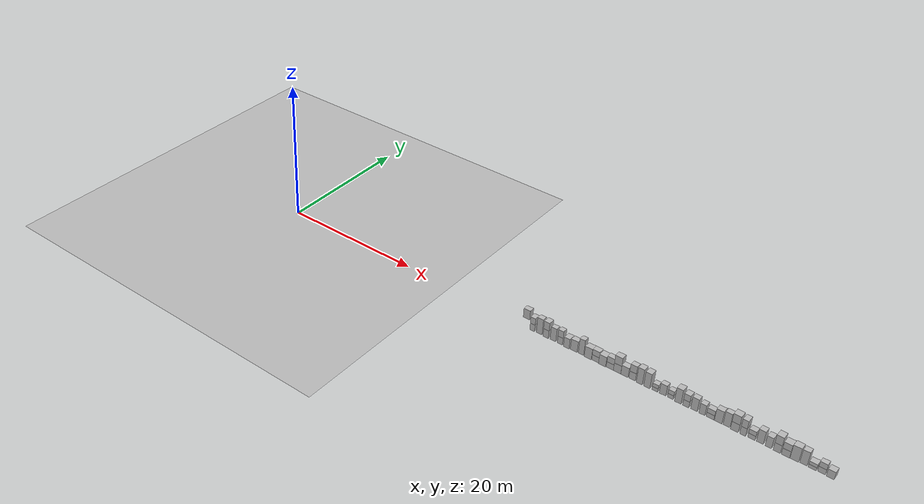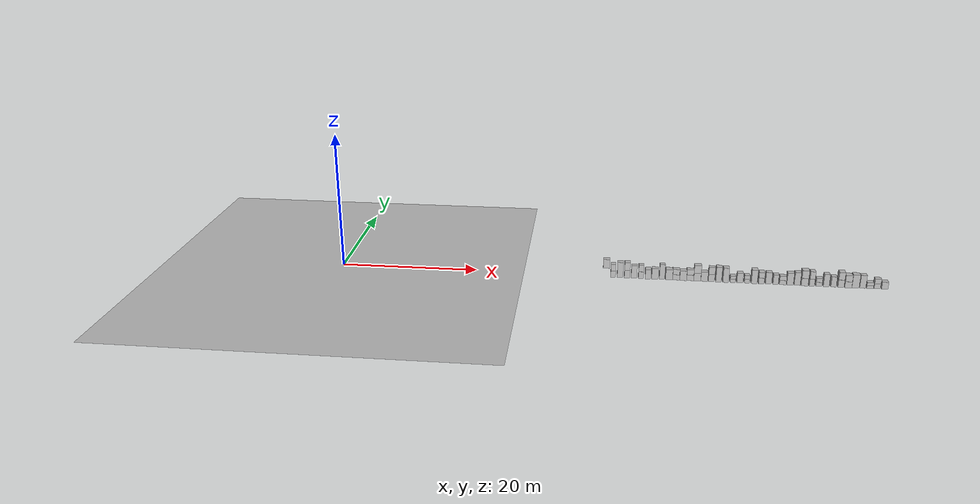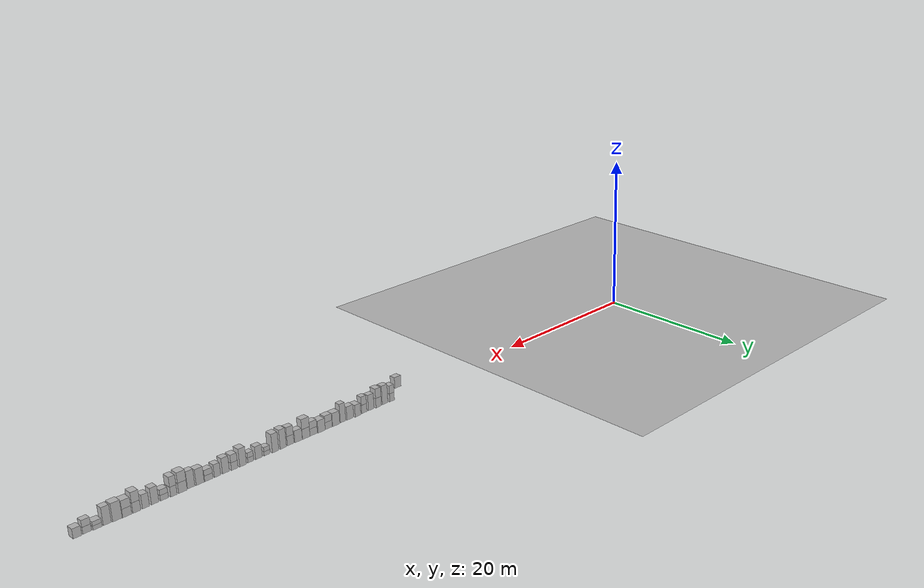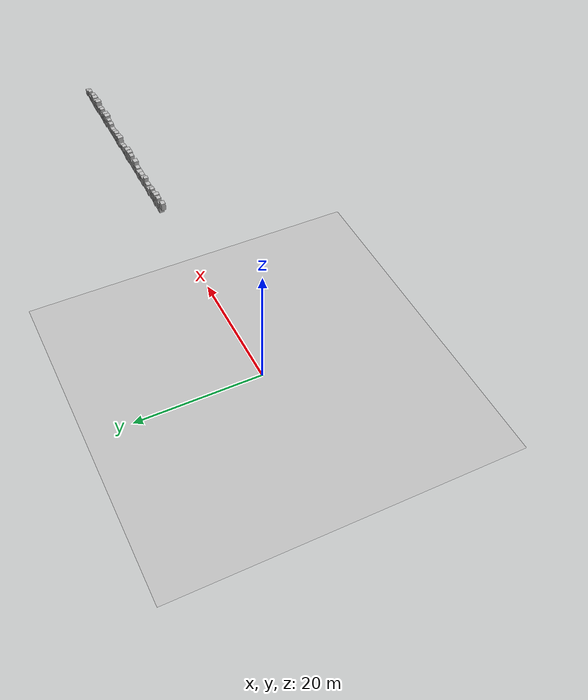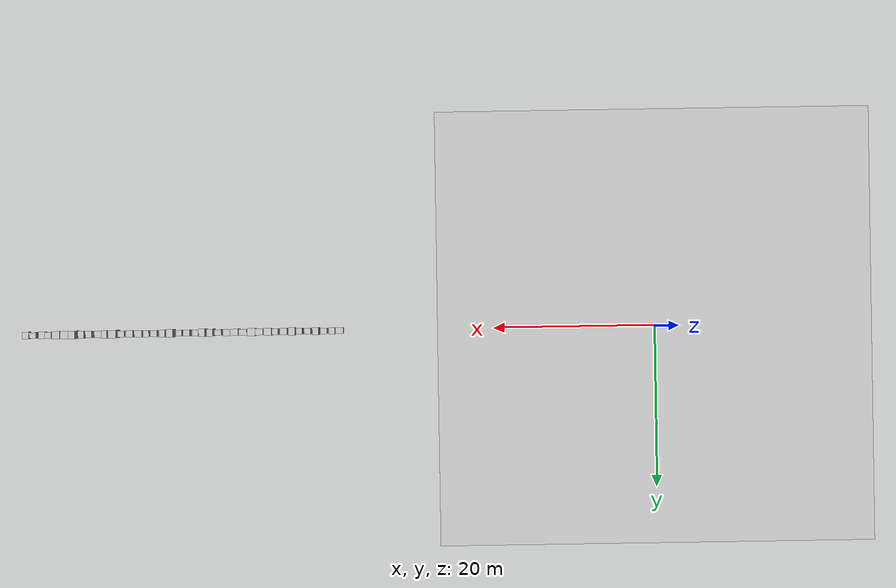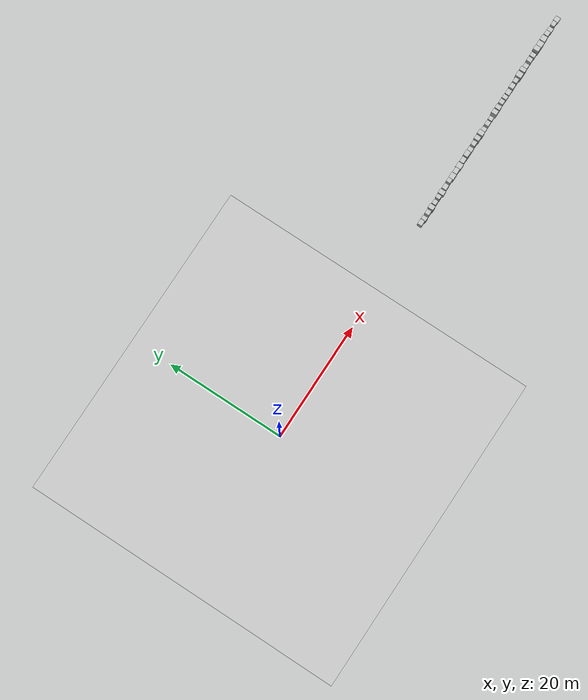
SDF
<sdf version="1.5">
 <world name="default">
  <model name="ground_plane">
   <static>true</static>
   <link name="link">
    <collision name="collision">
     <geometry><plane><normal>0 0 1</normal><size>250 250</size></plane></geometry>
     <surface><friction><ode><mu>1</mu><mu2>1</mu2></ode></friction></surface>
    </collision>
    <visual name="grass">
     <cast_shadows>false</cast_shadows>
     <geometry><mesh><uri>file://grass_plane/meshes/grass_plane.dae</uri></mesh></geometry>
    </visual>
   </link>
  </model>
  <model name="Cardboard_box_top_39">
   <link name="link_0">
    <pose>39 0 1.378921987 0 0 0</pose>
    <inertial>
     <mass>1</mass>
     <inertia>
      <ixx>0.166667</ixx>
      <ixy>0</ixy>
      <ixz>0</ixz>
      <iyy>0.166667</iyy>
      <iyz>0</iyz>
      <izz>0.166667</izz>
     </inertia>
    </inertial>
    <collision name="collision">
     <geometry>
      <mesh>
       <uri>model://Cardboard_box/meshes/cardboard_box.dae</uri>
       <scale>2.36988516869 1.93261764654 3.4473049675</scale>
      </mesh>
     </geometry>
    </collision>
    <visual name="visual">
     <geometry>
      <mesh>
       <uri>model://Cardboard_box/meshes/cardboard_box.dae</uri>
       <scale>2.36988516869 1.93261764654 3.4473049675</scale>
      </mesh>
     </geometry>
    </visual>
   </link>
   <static>1</static>
  </model>
  <model name="Cardboard_box_40">
   <link name="link_0">
    <pose>40 0 0 0 0 0</pose>
    <inertial>
     <mass>1</mass>
     <inertia>
      <ixx>0.166667</ixx>
      <ixy>0</ixy>
      <ixz>0</ixz>
      <iyy>0.166667</iyy>
      <iyz>0</iyz>
      <izz>0.166667</izz>
     </inertia>
    </inertial>
    <collision name="collision">
     <geometry>
      <mesh>
       <uri>model://Cardboard_box/meshes/cardboard_box.dae</uri>
       <scale>1.74623476498 2.15648304569 2.54420324199</scale>
      </mesh>
     </geometry>
    </collision>
    <visual name="visual">
     <geometry>
      <mesh>
       <uri>model://Cardboard_box/meshes/cardboard_box.dae</uri>
       <scale>1.74623476498 2.15648304569 2.54420324199</scale>
      </mesh>
     </geometry>
    </visual>
   </link>
   <static>1</static>
  </model>
  <model name="Cardboard_box_top_40">
   <link name="link_0">
    <pose>40 0 1.0176812968 0 0 0</pose>
    <inertial>
     <mass>1</mass>
     <inertia>
      <ixx>0.166667</ixx>
      <ixy>0</ixy>
      <ixz>0</ixz>
      <iyy>0.166667</iyy>
      <iyz>0</iyz>
      <izz>0.166667</izz>
     </inertia>
    </inertial>
    <collision name="collision">
     <geometry>
      <mesh>
       <uri>model://Cardboard_box/meshes/cardboard_box.dae</uri>
       <scale>1.74623476498 2.15648304569 2.54420324199</scale>
      </mesh>
     </geometry>
    </collision>
    <visual name="visual">
     <geometry>
      <mesh>
       <uri>model://Cardboard_box/meshes/cardboard_box.dae</uri>
       <scale>1.74623476498 2.15648304569 2.54420324199</scale>
      </mesh>
     </geometry>
    </visual>
   </link>
   <static>1</static>
  </model>
  <model name="Cardboard_box_41">
   <link name="link_0">
    <pose>41 0 0 0 0 0</pose>
    <inertial>
     <mass>1</mass>
     <inertia>
      <ixx>0.166667</ixx>
      <ixy>0</ixy>
      <ixz>0</ixz>
      <iyy>0.166667</iyy>
      <iyz>0</iyz>
      <izz>0.166667</izz>
     </inertia>
    </inertial>
    <collision name="collision">
     <geometry>
      <mesh>
       <uri>model://Cardboard_box/meshes/cardboard_box.dae</uri>
       <scale>2.07174844695 1.8590701938 5.9690706106</scale>
      </mesh>
     </geometry>
    </collision>
    <visual name="visual">
     <geometry>
      <mesh>
       <uri>model://Cardboard_box/meshes/cardboard_box.dae</uri>
       <scale>2.07174844695 1.8590701938 5.9690706106</scale>
      </mesh>
     </geometry>
    </visual>
   </link>
   <static>1</static>
  </model>
  <model name="Cardboard_box_42">
   <link name="link_0">
    <pose>42 0 0 0 0 0</pose>
    <inertial>
     <mass>1</mass>
     <inertia>
      <ixx>0.166667</ixx>
      <ixy>0</ixy>
      <ixz>0</ixz>
      <iyy>0.166667</iyy>
      <iyz>0</iyz>
      <izz>0.166667</izz>
     </inertia>
    </inertial>
    <collision name="collision">
     <geometry>
      <mesh>
       <uri>model://Cardboard_box/meshes/cardboard_box.dae</uri>
       <scale>1.94985891384 2.32268803161 2.9977882604</scale>
      </mesh>
     </geometry>
    </collision>
    <visual name="visual">
     <geometry>
      <mesh>
       <uri>model://Cardboard_box/meshes/cardboard_box.dae</uri>
       <scale>1.94985891384 2.32268803161 2.9977882604</scale>
      </mesh>
     </geometry>
    </visual>
   </link>
   <static>1</static>
  </model>
  <model name="Cardboard_box_top_42">
   <link name="link_0">
    <pose>42 0 1.19911530416 0 0 0</pose>
    <inertial>
     <mass>1</mass>
     <inertia>
      <ixx>0.166667</ixx>
      <ixy>0</ixy>
      <ixz>0</ixz>
      <iyy>0.166667</iyy>
      <iyz>0</iyz>
      <izz>0.166667</izz>
     </inertia>
    </inertial>
    <collision name="collision">
     <geometry>
      <mesh>
       <uri>model://Cardboard_box/meshes/cardboard_box.dae</uri>
       <scale>1.94985891384 2.32268803161 2.9977882604</scale>
      </mesh>
     </geometry>
    </collision>
    <visual name="visual">
     <geometry>
      <mesh>
       <uri>model://Cardboard_box/meshes/cardboard_box.dae</uri>
       <scale>1.94985891384 2.32268803161 2.9977882604</scale>
      </mesh>
     </geometry>
    </visual>
   </link>
   <static>1</static>
  </model>
  <model name="Cardboard_box_43">
   <link name="link_0">
    <pose>43 0 0 0 0 0</pose>
    <inertial>
     <mass>1</mass>
     <inertia>
      <ixx>0.166667</ixx>
      <ixy>0</ixy>
      <ixz>0</ixz>
      <iyy>0.166667</iyy>
      <iyz>0</iyz>
      <izz>0.166667</izz>
     </inertia>
    </inertial>
    <collision name="collision">
     <geometry>
      <mesh>
       <uri>model://Cardboard_box/meshes/cardboard_box.dae</uri>
       <scale>2.02390120067 1.80275821605 4.88632480097</scale>
      </mesh>
     </geometry>
    </collision>
    <visual name="visual">
     <geometry>
      <mesh>
       <uri>model://Cardboard_box/meshes/cardboard_box.dae</uri>
       <scale>2.02390120067 1.80275821605 4.88632480097</scale>
      </mesh>
     </geometry>
    </visual>
   </link>
   <static>1</static>
  </model>
  <model name="Cardboard_box_44">
   <link name="link_0">
    <pose>44 0 0 0 0 0</pose>
    <inertial>
     <mass>1</mass>
     <inertia>
      <ixx>0.166667</ixx>
      <ixy>0</ixy>
      <ixz>0</ixz>
      <iyy>0.166667</iyy>
      <iyz>0</iyz>
      <izz>0.166667</izz>
     </inertia>
    </inertial>
    <collision name="collision">
     <geometry>
      <mesh>
       <uri>model://Cardboard_box/meshes/cardboard_box.dae</uri>
       <scale>1.82216494402 1.83633228518 2.60818425939</scale>
      </mesh>
     </geometry>
    </collision>
    <visual name="visual">
     <geometry>
      <mesh>
       <uri>model://Cardboard_box/meshes/cardboard_box.dae</uri>
       <scale>1.82216494402 1.83633228518 2.60818425939</scale>
      </mesh>
     </geometry>
    </visual>
   </link>
   <static>1</static>
  </model>
  <model name="Cardboard_box_top_44">
   <link name="link_0">
    <pose>44 0 1.04327370376 0 0 0</pose>
    <inertial>
     <mass>1</mass>
     <inertia>
      <ixx>0.166667</ixx>
      <ixy>0</ixy>
      <ixz>0</ixz>
      <iyy>0.166667</iyy>
      <iyz>0</iyz>
      <izz>0.166667</izz>
     </inertia>
    </inertial>
    <collision name="collision">
     <geometry>
      <mesh>
       <uri>model://Cardboard_box/meshes/cardboard_box.dae</uri>
       <scale>1.82216494402 1.83633228518 2.60818425939</scale>
      </mesh>
     </geometry>
    </collision>
    <visual name="visual">
     <geometry>
      <mesh>
       <uri>model://Cardboard_box/meshes/cardboard_box.dae</uri>
       <scale>1.82216494402 1.83633228518 2.60818425939</scale>
      </mesh>
     </geometry>
    </visual>
   </link>
   <static>1</static>
  </model>
  <model name="Cardboard_box_45">
   <link name="link_0">
    <pose>45 0 0 0 0 0</pose>
    <inertial>
     <mass>1</mass>
     <inertia>
      <ixx>0.166667</ixx>
      <ixy>0</ixy>
      <ixz>0</ixz>
      <iyy>0.166667</iyy>
      <iyz>0</iyz>
      <izz>0.166667</izz>
     </inertia>
    </inertial>
    <collision name="collision">
     <geometry>
      <mesh>
       <uri>model://Cardboard_box/meshes/cardboard_box.dae</uri>
       <scale>1.98125422236 2.49018535688 3.73680493574</scale>
      </mesh>
     </geometry>
    </collision>
    <visual name="visual">
     <geometry>
      <mesh>
       <uri>model://Cardboard_box/meshes/cardboard_box.dae</uri>
       <scale>1.98125422236 2.49018535688 3.73680493574</scale>
      </mesh>
     </geometry>
    </visual>
   </link>
   <static>1</static>
  </model>
  <model name="Cardboard_box_46">
   <link name="link_0">
    <pose>46 0 0 0 0 0</pose>
    <inertial>
     <mass>1</mass>
     <inertia>
      <ixx>0.166667</ixx>
      <ixy>0</ixy>
      <ixz>0</ixz>
      <iyy>0.166667</iyy>
      <iyz>0</iyz>
      <izz>0.166667</izz>
     </inertia>
    </inertial>
    <collision name="collision">
     <geometry>
      <mesh>
       <uri>model://Cardboard_box/meshes/cardboard_box.dae</uri>
       <scale>2.38174562929 1.97675415498 4.09787659887</scale>
      </mesh>
     </geometry>
    </collision>
    <visual name="visual">
     <geometry>
      <mesh>
       <uri>model://Cardboard_box/meshes/cardboard_box.dae</uri>
       <scale>2.38174562929 1.97675415498 4.09787659887</scale>
      </mesh>
     </geometry>
    </visual>
   </link>
   <static>1</static>
  </model>
  <model name="Cardboard_box_47">
   <link name="link_0">
    <pose>47 0 0 0 0 0</pose>
    <inertial>
     <mass>1</mass>
     <inertia>
      <ixx>0.166667</ixx>
      <ixy>0</ixy>
      <ixz>0</ixz>
      <iyy>0.166667</iyy>
      <iyz>0</iyz>
      <izz>0.166667</izz>
     </inertia>
    </inertial>
    <collision name="collision">
     <geometry>
      <mesh>
       <uri>model://Cardboard_box/meshes/cardboard_box.dae</uri>
       <scale>1.86855548333 1.81490779191 5.77954832776</scale>
      </mesh>
     </geometry>
    </collision>
    <visual name="visual">
     <geometry>
      <mesh>
       <uri>model://Cardboard_box/meshes/cardboard_box.dae</uri>
       <scale>1.86855548333 1.81490779191 5.77954832776</scale>
      </mesh>
     </geometry>
    </visual>
   </link>
   <static>1</static>
  </model>
  <model name="Cardboard_box_48">
   <link name="link_0">
    <pose>48 0 0 0 0 0</pose>
    <inertial>
     <mass>1</mass>
     <inertia>
      <ixx>0.166667</ixx>
      <ixy>0</ixy>
      <ixz>0</ixz>
      <iyy>0.166667</iyy>
      <iyz>0</iyz>
      <izz>0.166667</izz>
     </inertia>
    </inertial>
    <collision name="collision">
     <geometry>
      <mesh>
       <uri>model://Cardboard_box/meshes/cardboard_box.dae</uri>
       <scale>2.49047472815 2.23166376945 4.05586709387</scale>
      </mesh>
     </geometry>
    </collision>
    <visual name="visual">
     <geometry>
      <mesh>
       <uri>model://Cardboard_box/meshes/cardboard_box.dae</uri>
       <scale>2.49047472815 2.23166376945 4.05586709387</scale>
      </mesh>
     </geometry>
    </visual>
   </link>
   <static>1</static>
  </model>
  <model name="Cardboard_box_49">
   <link name="link_0">
    <pose>49 0 0 0 0 0</pose>
    <inertial>
     <mass>1</mass>
     <inertia>
      <ixx>0.166667</ixx>
      <ixy>0</ixy>
      <ixz>0</ixz>
      <iyy>0.166667</iyy>
      <iyz>0</iyz>
      <izz>0.166667</izz>
     </inertia>
    </inertial>
    <collision name="collision">
     <geometry>
      <mesh>
       <uri>model://Cardboard_box/meshes/cardboard_box.dae</uri>
       <scale>2.45009182766 1.96782809173 2.07866308442</scale>
      </mesh>
     </geometry>
    </collision>
    <visual name="visual">
     <geometry>
      <mesh>
       <uri>model://Cardboard_box/meshes/cardboard_box.dae</uri>
       <scale>2.45009182766 1.96782809173 2.07866308442</scale>
      </mesh>
     </geometry>
    </visual>
   </link>
   <static>1</static>
  </model>
  <model name="Cardboard_box_top_49">
   <link name="link_0">
    <pose>49 0 0.831465233766 0 0 0</pose>
    <inertial>
     <mass>1</mass>
     <inertia>
      <ixx>0.166667</ixx>
      <ixy>0</ixy>
      <ixz>0</ixz>
      <iyy>0.166667</iyy>
      <iyz>0</iyz>
      <izz>0.166667</izz>
     </inertia>
    </inertial>
    <collision name="collision">
     <geometry>
      <mesh>
       <uri>model://Cardboard_box/meshes/cardboard_box.dae</uri>
       <scale>2.45009182766 1.96782809173 2.07866308442</scale>
      </mesh>
     </geometry>
    </collision>
    <visual name="visual">
     <geometry>
      <mesh>
       <uri>model://Cardboard_box/meshes/cardboard_box.dae</uri>
       <scale>2.45009182766 1.96782809173 2.07866308442</scale>
      </mesh>
     </geometry>
    </visual>
   </link>
   <static>1</static>
  </model>
  <model name="Cardboard_box_50">
   <link name="link_0">
    <pose>50 0 0 0 0 0</pose>
    <inertial>
     <mass>1</mass>
     <inertia>
      <ixx>0.166667</ixx>
      <ixy>0</ixy>
      <ixz>0</ixz>
      <iyy>0.166667</iyy>
      <iyz>0</iyz>
      <izz>0.166667</izz>
     </inertia>
    </inertial>
    <collision name="collision">
     <geometry>
      <mesh>
       <uri>model://Cardboard_box/meshes/cardboard_box.dae</uri>
       <scale>2.43829130147 2.39519968935 3.71840603727</scale>
      </mesh>
     </geometry>
    </collision>
    <visual name="visual">
     <geometry>
      <mesh>
       <uri>model://Cardboard_box/meshes/cardboard_box.dae</uri>
       <scale>2.43829130147 2.39519968935 3.71840603727</scale>
      </mesh>
     </geometry>
    </visual>
   </link>
   <static>1</static>
  </model>
  <model name="Cardboard_box_51">
   <link name="link_0">
    <pose>51 0 0 0 0 0</pose>
    <inertial>
     <mass>1</mass>
     <inertia>
      <ixx>0.166667</ixx>
      <ixy>0</ixy>
      <ixz>0</ixz>
      <iyy>0.166667</iyy>
      <iyz>0</iyz>
      <izz>0.166667</izz>
     </inertia>
    </inertial>
    <collision name="collision">
     <geometry>
      <mesh>
       <uri>model://Cardboard_box/meshes/cardboard_box.dae</uri>
       <scale>2.46034102701 1.90035894033 2.1133312958</scale>
      </mesh>
     </geometry>
    </collision>
    <visual name="visual">
     <geometry>
      <mesh>
       <uri>model://Cardboard_box/meshes/cardboard_box.dae</uri>
       <scale>2.46034102701 1.90035894033 2.1133312958</scale>
      </mesh>
     </geometry>
    </visual>
   </link>
   <static>1</static>
  </model>
  <model name="Cardboard_box_top_51">
   <link name="link_0">
    <pose>51 0 0.84533251832 0 0 0</pose>
    <inertial>
     <mass>1</mass>
     <inertia>
      <ixx>0.166667</ixx>
      <ixy>0</ixy>
      <ixz>0</ixz>
      <iyy>0.166667</iyy>
      <iyz>0</iyz>
      <izz>0.166667</izz>
     </inertia>
    </inertial>
    <collision name="collision">
     <geometry>
      <mesh>
       <uri>model://Cardboard_box/meshes/cardboard_box.dae</uri>
       <scale>2.46034102701 1.90035894033 2.1133312958</scale>
      </mesh>
     </geometry>
    </collision>
    <visual name="visual">
     <geometry>
      <mesh>
       <uri>model://Cardboard_box/meshes/cardboard_box.dae</uri>
       <scale>2.46034102701 1.90035894033 2.1133312958</scale>
      </mesh>
     </geometry>
    </visual>
   </link>
   <static>1</static>
  </model>
  <model name="Cardboard_box_52">
   <link name="link_0">
    <pose>52 0 0 0 0 0</pose>
    <inertial>
     <mass>1</mass>
     <inertia>
      <ixx>0.166667</ixx>
      <ixy>0</ixy>
      <ixz>0</ixz>
      <iyy>0.166667</iyy>
      <iyz>0</iyz>
      <izz>0.166667</izz>
     </inertia>
    </inertial>
    <collision name="collision">
     <geometry>
      <mesh>
       <uri>model://Cardboard_box/meshes/cardboard_box.dae</uri>
       <scale>2.49603901147 2.05409869671 3.02047821061</scale>
      </mesh>
     </geometry>
    </collision>
    <visual name="visual">
     <geometry>
      <mesh>
       <uri>model://Cardboard_box/meshes/cardboard_box.dae</uri>
       <scale>2.49603901147 2.05409869671 3.02047821061</scale>
      </mesh>
     </geometry>
    </visual>
   </link>
   <static>1</static>
  </model>
  <model name="Cardboard_box_top_52">
   <link name="link_0">
    <pose>52 0 1.20819128424 0 0 0</pose>
    <inertial>
     <mass>1</mass>
     <inertia>
      <ixx>0.166667</ixx>
      <ixy>0</ixy>
      <ixz>0</ixz>
      <iyy>0.166667</iyy>
      <iyz>0</iyz>
      <izz>0.166667</izz>
     </inertia>
    </inertial>
    <collision name="collision">
     <geometry>
      <mesh>
       <uri>model://Cardboard_box/meshes/cardboard_box.dae</uri>
       <scale>2.49603901147 2.05409869671 3.02047821061</scale>
      </mesh>
     </geometry>
    </collision>
    <visual name="visual">
     <geometry>
      <mesh>
       <uri>model://Cardboard_box/meshes/cardboard_box.dae</uri>
       <scale>2.49603901147 2.05409869671 3.02047821061</scale>
      </mesh>
     </geometry>
    </visual>
   </link>
   <static>1</static>
  </model>
  <model name="Cardboard_box_53">
   <link name="link_0">
    <pose>53 0 0 0 0 0</pose>
    <inertial>
     <mass>1</mass>
     <inertia>
      <ixx>0.166667</ixx>
      <ixy>0</ixy>
      <ixz>0</ixz>
      <iyy>0.166667</iyy>
      <iyz>0</iyz>
      <izz>0.166667</izz>
     </inertia>
    </inertial>
    <collision name="collision">
     <geometry>
      <mesh>
       <uri>model://Cardboard_box/meshes/cardboard_box.dae</uri>
       <scale>2.45055112845 2.04536735304 3.56994293737</scale>
      </mesh>
     </geometry>
    </collision>
    <visual name="visual">
     <geometry>
      <mesh>
       <uri>model://Cardboard_box/meshes/cardboard_box.dae</uri>
       <scale>2.45055112845 2.04536735304 3.56994293737</scale>
      </mesh>
     </geometry>
    </visual>
   </link>
   <static>1</static>
  </model>
  <model name="Cardboard_box_54">
   <link name="link_0">
    <pose>54 0 0 0 0 0</pose>
    <inertial>
     <mass>1</mass>
     <inertia>
      <ixx>0.166667</ixx>
      <ixy>0</ixy>
      <ixz>0</ixz>
      <iyy>0.166667</iyy>
      <iyz>0</iyz>
      <izz>0.166667</izz>
     </inertia>
    </inertial>
    <collision name="collision">
     <geometry>
      <mesh>
       <uri>model://Cardboard_box/meshes/cardboard_box.dae</uri>
       <scale>2.15655675734 1.81292208911 2.74386636168</scale>
      </mesh>
     </geometry>
    </collision>
    <visual name="visual">
     <geometry>
      <mesh>
       <uri>model://Cardboard_box/meshes/cardboard_box.dae</uri>
       <scale>2.15655675734 1.81292208911 2.74386636168</scale>
      </mesh>
     </geometry>
    </visual>
   </link>
   <static>1</static>
  </model>
  <model name="Cardboard_box_top_54">
   <link name="link_0">
    <pose>54 0 1.09754654467 0 0 0</pose>
    <inertial>
     <mass>1</mass>
     <inertia>
      <ixx>0.166667</ixx>
      <ixy>0</ixy>
      <ixz>0</ixz>
      <iyy>0.166667</iyy>
      <iyz>0</iyz>
      <izz>0.166667</izz>
     </inertia>
    </inertial>
    <collision name="collision">
     <geometry>
      <mesh>
       <uri>model://Cardboard_box/meshes/cardboard_box.dae</uri>
       <scale>2.15655675734 1.81292208911 2.74386636168</scale>
      </mesh>
     </geometry>
    </collision>
    <visual name="visual">
     <geometry>
      <mesh>
       <uri>model://Cardboard_box/meshes/cardboard_box.dae</uri>
       <scale>2.15655675734 1.81292208911 2.74386636168</scale>
      </mesh>
     </geometry>
    </visual>
   </link>
   <static>1</static>
  </model>
  <model name="Cardboard_box_55">
   <link name="link_0">
    <pose>55 0 0 0 0 0</pose>
    <inertial>
     <mass>1</mass>
     <inertia>
      <ixx>0.166667</ixx>
      <ixy>0</ixy>
      <ixz>0</ixz>
      <iyy>0.166667</iyy>
      <iyz>0</iyz>
      <izz>0.166667</izz>
     </inertia>
    </inertial>
    <collision name="collision">
     <geometry>
      <mesh>
       <uri>model://Cardboard_box/meshes/cardboard_box.dae</uri>
       <scale>1.96191571525 2.2453888578 5.79350779589</scale>
      </mesh>
     </geometry>
    </collision>
    <visual name="visual">
     <geometry>
      <mesh>
       <uri>model://Cardboard_box/meshes/cardboard_box.dae</uri>
       <scale>1.96191571525 2.2453888578 5.79350779589</scale>
      </mesh>
     </geometry>
    </visual>
   </link>
   <static>1</static>
  </model>
  <model name="Cardboard_box_56">
   <link name="link_0">
    <pose>56 0 0 0 0 0</pose>
    <inertial>
     <mass>1</mass>
     <inertia>
      <ixx>0.166667</ixx>
      <ixy>0</ixy>
      <ixz>0</ixz>
      <iyy>0.166667</iyy>
      <iyz>0</iyz>
      <izz>0.166667</izz>
     </inertia>
    </inertial>
    <collision name="collision">
     <geometry>
      <mesh>
       <uri>model://Cardboard_box/meshes/cardboard_box.dae</uri>
       <scale>1.99089059019 2.40822154893 5.56925611816</scale>
      </mesh>
     </geometry>
    </collision>
    <visual name="visual">
     <geometry>
      <mesh>
       <uri>model://Cardboard_box/meshes/cardboard_box.dae</uri>
       <scale>1.99089059019 2.40822154893 5.56925611816</scale>
      </mesh>
     </geometry>
    </visual>
   </link>
   <static>1</static>
  </model>
  <model name="Cardboard_box_57">
   <link name="link_0">
    <pose>57 0 0 0 0 0</pose>
    <inertial>
     <mass>1</mass>
     <inertia>
      <ixx>0.166667</ixx>
      <ixy>0</ixy>
      <ixz>0</ixz>
      <iyy>0.166667</iyy>
      <iyz>0</iyz>
      <izz>0.166667</izz>
     </inertia>
    </inertial>
    <collision name="collision">
     <geometry>
      <mesh>
       <uri>model://Cardboard_box/meshes/cardboard_box.dae</uri>
       <scale>1.85170277421 1.93844950935 1.25677768462</scale>
      </mesh>
     </geometry>
    </collision>
    <visual name="visual">
     <geometry>
      <mesh>
       <uri>model://Cardboard_box/meshes/cardboard_box.dae</uri>
       <scale>1.85170277421 1.93844950935 1.25677768462</scale>
      </mesh>
     </geometry>
    </visual>
   </link>
   <static>1</static>
  </model>
  <model name="Cardboard_box_top_57">
   <link name="link_0">
    <pose>57 0 0.502711073847 0 0 0</pose>
    <inertial>
     <mass>1</mass>
     <inertia>
      <ixx>0.166667</ixx>
      <ixy>0</ixy>
      <ixz>0</ixz>
      <iyy>0.166667</iyy>
      <iyz>0</iyz>
      <izz>0.166667</izz>
     </inertia>
    </inertial>
    <collision name="collision">
     <geometry>
      <mesh>
       <uri>model://Cardboard_box/meshes/cardboard_box.dae</uri>
       <scale>1.85170277421 1.93844950935 1.25677768462</scale>
      </mesh>
     </geometry>
    </collision>
    <visual name="visual">
     <geometry>
      <mesh>
       <uri>model://Cardboard_box/meshes/cardboard_box.dae</uri>
       <scale>1.85170277421 1.93844950935 1.25677768462</scale>
      </mesh>
     </geometry>
    </visual>
   </link>
   <static>1</static>
  </model>
  <model name="Cardboard_box_58">
   <link name="link_0">
    <pose>58 0 0 0 0 0</pose>
    <inertial>
     <mass>1</mass>
     <inertia>
      <ixx>0.166667</ixx>
      <ixy>0</ixy>
      <ixz>0</ixz>
      <iyy>0.166667</iyy>
      <iyz>0</iyz>
      <izz>0.166667</izz>
     </inertia>
    </inertial>
    <collision name="collision">
     <geometry>
      <mesh>
       <uri>model://Cardboard_box/meshes/cardboard_box.dae</uri>
       <scale>2.09703204711 1.84449230442 3.78365391433</scale>
      </mesh>
     </geometry>
    </collision>
    <visual name="visual">
     <geometry>
      <mesh>
       <uri>model://Cardboard_box/meshes/cardboard_box.dae</uri>
       <scale>2.09703204711 1.84449230442 3.78365391433</scale>
      </mesh>
     </geometry>
    </visual>
   </link>
   <static>1</static>
  </model>
  <model name="Cardboard_box_59">
   <link name="link_0">
    <pose>59 0 0 0 0 0</pose>
    <inertial>
     <mass>1</mass>
     <inertia>
      <ixx>0.166667</ixx>
      <ixy>0</ixy>
      <ixz>0</ixz>
      <iyy>0.166667</iyy>
      <iyz>0</iyz>
      <izz>0.166667</izz>
     </inertia>
    </inertial>
    <collision name="collision">
     <geometry>
      <mesh>
       <uri>model://Cardboard_box/meshes/cardboard_box.dae</uri>
       <scale>1.79574300208 1.82056789145 1.46373186571</scale>
      </mesh>
     </geometry>
    </collision>
    <visual name="visual">
     <geometry>
      <mesh>
       <uri>model://Cardboard_box/meshes/cardboard_box.dae</uri>
       <scale>1.79574300208 1.82056789145 1.46373186571</scale>
      </mesh>
     </geometry>
    </visual>
   </link>
   <static>1</static>
  </model>
  <model name="Cardboard_box_top_59">
   <link name="link_0">
    <pose>59 0 0.585492746286 0 0 0</pose>
    <inertial>
     <mass>1</mass>
     <inertia>
      <ixx>0.166667</ixx>
      <ixy>0</ixy>
      <ixz>0</ixz>
      <iyy>0.166667</iyy>
      <iyz>0</iyz>
      <izz>0.166667</izz>
     </inertia>
    </inertial>
    <collision name="collision">
     <geometry>
      <mesh>
       <uri>model://Cardboard_box/meshes/cardboard_box.dae</uri>
       <scale>1.79574300208 1.82056789145 1.46373186571</scale>
      </mesh>
     </geometry>
    </collision>
    <visual name="visual">
     <geometry>
      <mesh>
       <uri>model://Cardboard_box/meshes/cardboard_box.dae</uri>
       <scale>1.79574300208 1.82056789145 1.46373186571</scale>
      </mesh>
     </geometry>
    </visual>
   </link>
   <static>1</static>
  </model>
  <model name="Cardboard_box_60">
   <link name="link_0">
    <pose>60 0 0 0 0 0</pose>
    <inertial>
     <mass>1</mass>
     <inertia>
      <ixx>0.166667</ixx>
      <ixy>0</ixy>
      <ixz>0</ixz>
      <iyy>0.166667</iyy>
      <iyz>0</iyz>
      <izz>0.166667</izz>
     </inertia>
    </inertial>
    <collision name="collision">
     <geometry>
      <mesh>
       <uri>model://Cardboard_box/meshes/cardboard_box.dae</uri>
       <scale>2.0317222239 2.33707536954 5.25924644565</scale>
      </mesh>
     </geometry>
    </collision>
    <visual name="visual">
     <geometry>
      <mesh>
       <uri>model://Cardboard_box/meshes/cardboard_box.dae</uri>
       <scale>2.0317222239 2.33707536954 5.25924644565</scale>
      </mesh>
     </geometry>
    </visual>
   </link>
   <static>1</static>
  </model>
  <model name="Cardboard_box_61">
   <link name="link_0">
    <pose>61 0 0 0 0 0</pose>
    <inertial>
     <mass>1</mass>
     <inertia>
      <ixx>0.166667</ixx>
      <ixy>0</ixy>
      <ixz>0</ixz>
      <iyy>0.166667</iyy>
      <iyz>0</iyz>
      <izz>0.166667</izz>
     </inertia>
    </inertial>
    <collision name="collision">
     <geometry>
      <mesh>
       <uri>model://Cardboard_box/meshes/cardboard_box.dae</uri>
       <scale>1.93252299594 2.24463626698 2.22999585722</scale>
      </mesh>
     </geometry>
    </collision>
    <visual name="visual">
     <geometry>
      <mesh>
       <uri>model://Cardboard_box/meshes/cardboard_box.dae</uri>
       <scale>1.93252299594 2.24463626698 2.22999585722</scale>
      </mesh>
     </geometry>
    </visual>
   </link>
   <static>1</static>
  </model>
  <model name="Cardboard_box_top_61">
   <link name="link_0">
    <pose>61 0 0.891998342889 0 0 0</pose>
    <inertial>
     <mass>1</mass>
     <inertia>
      <ixx>0.166667</ixx>
      <ixy>0</ixy>
      <ixz>0</ixz>
      <iyy>0.166667</iyy>
      <iyz>0</iyz>
      <izz>0.166667</izz>
     </inertia>
    </inertial>
    <collision name="collision">
     <geometry>
      <mesh>
       <uri>model://Cardboard_box/meshes/cardboard_box.dae</uri>
       <scale>1.93252299594 2.24463626698 2.22999585722</scale>
      </mesh>
     </geometry>
    </collision>
    <visual name="visual">
     <geometry>
      <mesh>
       <uri>model://Cardboard_box/meshes/cardboard_box.dae</uri>
       <scale>1.93252299594 2.24463626698 2.22999585722</scale>
      </mesh>
     </geometry>
    </visual>
   </link>
   <static>1</static>
  </model>
  <model name="Cardboard_box_62">
   <link name="link_0">
    <pose>62 0 0 0 0 0</pose>
    <inertial>
     <mass>1</mass>
     <inertia>
      <ixx>0.166667</ixx>
      <ixy>0</ixy>
      <ixz>0</ixz>
      <iyy>0.166667</iyy>
      <iyz>0</iyz>
      <izz>0.166667</izz>
     </inertia>
    </inertial>
    <collision name="collision">
     <geometry>
      <mesh>
       <uri>model://Cardboard_box/meshes/cardboard_box.dae</uri>
       <scale>2.04521417364 1.92702857273 4.54442635414</scale>
      </mesh>
     </geometry>
    </collision>
    <visual name="visual">
     <geometry>
      <mesh>
       <uri>model://Cardboard_box/meshes/cardboard_box.dae</uri>
       <scale>2.04521417364 1.92702857273 4.54442635414</scale>
      </mesh>
     </geometry>
    </visual>
   </link>
   <static>1</static>
  </model>
  <model name="Cardboard_box_63">
   <link name="link_0">
    <pose>63 0 0 0 0 0</pose>
    <inertial>
     <mass>1</mass>
     <inertia>
      <ixx>0.166667</ixx>
      <ixy>0</ixy>
      <ixz>0</ixz>
      <iyy>0.166667</iyy>
      <iyz>0</iyz>
      <izz>0.166667</izz>
     </inertia>
    </inertial>
    <collision name="collision">
     <geometry>
      <mesh>
       <uri>model://Cardboard_box/meshes/cardboard_box.dae</uri>
       <scale>1.82253590758 2.01833733197 3.73847996945</scale>
      </mesh>
     </geometry>
    </collision>
    <visual name="visual">
     <geometry>
      <mesh>
       <uri>model://Cardboard_box/meshes/cardboard_box.dae</uri>
       <scale>1.82253590758 2.01833733197 3.73847996945</scale>
      </mesh>
     </geometry>
    </visual>
   </link>
   <static>1</static>
  </model>
  <model name="Cardboard_box_64">
   <link name="link_0">
    <pose>64 0 0 0 0 0</pose>
    <inertial>
     <mass>1</mass>
     <inertia>
      <ixx>0.166667</ixx>
      <ixy>0</ixy>
      <ixz>0</ixz>
      <iyy>0.166667</iyy>
      <iyz>0</iyz>
      <izz>0.166667</izz>
     </inertia>
    </inertial>
    <collision name="collision">
     <geometry>
      <mesh>
       <uri>model://Cardboard_box/meshes/cardboard_box.dae</uri>
       <scale>2.38742495055 1.97274609705 1.62383112297</scale>
      </mesh>
     </geometry>
    </collision>
    <visual name="visual">
     <geometry>
      <mesh>
       <uri>model://Cardboard_box/meshes/cardboard_box.dae</uri>
       <scale>2.38742495055 1.97274609705 1.62383112297</scale>
      </mesh>
     </geometry>
    </visual>
   </link>
   <static>1</static>
  </model>
  <model name="Cardboard_box_top_64">
   <link name="link_0">
    <pose>64 0 0.649532449189 0 0 0</pose>
    <inertial>
     <mass>1</mass>
     <inertia>
      <ixx>0.166667</ixx>
      <ixy>0</ixy>
      <ixz>0</ixz>
      <iyy>0.166667</iyy>
      <iyz>0</iyz>
      <izz>0.166667</izz>
     </inertia>
    </inertial>
    <collision name="collision">
     <geometry>
      <mesh>
       <uri>model://Cardboard_box/meshes/cardboard_box.dae</uri>
       <scale>2.38742495055 1.97274609705 1.62383112297</scale>
      </mesh>
     </geometry>
    </collision>
    <visual name="visual">
     <geometry>
      <mesh>
       <uri>model://Cardboard_box/meshes/cardboard_box.dae</uri>
       <scale>2.38742495055 1.97274609705 1.62383112297</scale>
      </mesh>
     </geometry>
    </visual>
   </link>
   <static>1</static>
  </model>
  <model name="Cardboard_box_65">
   <link name="link_0">
    <pose>65 0 0 0 0 0</pose>
    <inertial>
     <mass>1</mass>
     <inertia>
      <ixx>0.166667</ixx>
      <ixy>0</ixy>
      <ixz>0</ixz>
      <iyy>0.166667</iyy>
      <iyz>0</iyz>
      <izz>0.166667</izz>
     </inertia>
    </inertial>
    <collision name="collision">
     <geometry>
      <mesh>
       <uri>model://Cardboard_box/meshes/cardboard_box.dae</uri>
       <scale>2.28691006632 1.99469639126 4.59484713122</scale>
      </mesh>
     </geometry>
    </collision>
    <visual name="visual">
     <geometry>
      <mesh>
       <uri>model://Cardboard_box/meshes/cardboard_box.dae</uri>
       <scale>2.28691006632 1.99469639126 4.59484713122</scale>
      </mesh>
     </geometry>
    </visual>
   </link>
   <static>1</static>
  </model>
  <model name="Cardboard_box_66">
   <link name="link_0">
    <pose>66 0 0 0 0 0</pose>
    <inertial>
     <mass>1</mass>
     <inertia>
      <ixx>0.166667</ixx>
      <ixy>0</ixy>
      <ixz>0</ixz>
      <iyy>0.166667</iyy>
      <iyz>0</iyz>
      <izz>0.166667</izz>
     </inertia>
    </inertial>
    <collision name="collision">
     <geometry>
      <mesh>
       <uri>model://Cardboard_box/meshes/cardboard_box.dae</uri>
       <scale>2.08075841405 1.78088092687 4.96951908271</scale>
      </mesh>
     </geometry>
    </collision>
    <visual name="visual">
     <geometry>
      <mesh>
       <uri>model://Cardboard_box/meshes/cardboard_box.dae</uri>
       <scale>2.08075841405 1.78088092687 4.96951908271</scale>
      </mesh>
     </geometry>
    </visual>
   </link>
   <static>1</static>
  </model>
  <model name="Cardboard_box_67">
   <link name="link_0">
    <pose>67 0 0 0 0 0</pose>
    <inertial>
     <mass>1</mass>
     <inertia>
      <ixx>0.166667</ixx>
      <ixy>0</ixy>
      <ixz>0</ixz>
      <iyy>0.166667</iyy>
      <iyz>0</iyz>
      <izz>0.166667</izz>
     </inertia>
    </inertial>
    <collision name="collision">
     <geometry>
      <mesh>
       <uri>model://Cardboard_box/meshes/cardboard_box.dae</uri>
       <scale>2.36097216508 2.43936687322 2.94869946805</scale>
      </mesh>
     </geometry>
    </collision>
    <visual name="visual">
     <geometry>
      <mesh>
       <uri>model://Cardboard_box/meshes/cardboard_box.dae</uri>
       <scale>2.36097216508 2.43936687322 2.94869946805</scale>
      </mesh>
     </geometry>
    </visual>
   </link>
   <static>1</static>
  </model>
  <model name="Cardboard_box_top_67">
   <link name="link_0">
    <pose>67 0 1.17947978722 0 0 0</pose>
    <inertial>
     <mass>1</mass>
     <inertia>
      <ixx>0.166667</ixx>
      <ixy>0</ixy>
      <ixz>0</ixz>
      <iyy>0.166667</iyy>
      <iyz>0</iyz>
      <izz>0.166667</izz>
     </inertia>
    </inertial>
    <collision name="collision">
     <geometry>
      <mesh>
       <uri>model://Cardboard_box/meshes/cardboard_box.dae</uri>
       <scale>2.36097216508 2.43936687322 2.94869946805</scale>
      </mesh>
     </geometry>
    </collision>
    <visual name="visual">
     <geometry>
      <mesh>
       <uri>model://Cardboard_box/meshes/cardboard_box.dae</uri>
       <scale>2.36097216508 2.43936687322 2.94869946805</scale>
      </mesh>
     </geometry>
    </visual>
   </link>
   <static>1</static>
  </model>
  <model name="Cardboard_box_68">
   <link name="link_0">
    <pose>68 0 0 0 0 0</pose>
    <inertial>
     <mass>1</mass>
     <inertia>
      <ixx>0.166667</ixx>
      <ixy>0</ixy>
      <ixz>0</ixz>
      <iyy>0.166667</iyy>
      <iyz>0</iyz>
      <izz>0.166667</izz>
     </inertia>
    </inertial>
    <collision name="collision">
     <geometry>
      <mesh>
       <uri>model://Cardboard_box/meshes/cardboard_box.dae</uri>
       <scale>1.74653554554 2.4654362458 2.80405742232</scale>
      </mesh>
     </geometry>
    </collision>
    <visual name="visual">
     <geometry>
      <mesh>
       <uri>model://Cardboard_box/meshes/cardboard_box.dae</uri>
       <scale>1.74653554554 2.4654362458 2.80405742232</scale>
      </mesh>
     </geometry>
    </visual>
   </link>
   <static>1</static>
  </model>
  <model name="Cardboard_box_top_68">
   <link name="link_0">
    <pose>68 0 1.12162296893 0 0 0</pose>
    <inertial>
     <mass>1</mass>
     <inertia>
      <ixx>0.166667</ixx>
      <ixy>0</ixy>
      <ixz>0</ixz>
      <iyy>0.166667</iyy>
      <iyz>0</iyz>
      <izz>0.166667</izz>
     </inertia>
    </inertial>
    <collision name="collision">
     <geometry>
      <mesh>
       <uri>model://Cardboard_box/meshes/cardboard_box.dae</uri>
       <scale>1.74653554554 2.4654362458 2.80405742232</scale>
      </mesh>
     </geometry>
    </collision>
    <visual name="visual">
     <geometry>
      <mesh>
       <uri>model://Cardboard_box/meshes/cardboard_box.dae</uri>
       <scale>1.74653554554 2.4654362458 2.80405742232</scale>
      </mesh>
     </geometry>
    </visual>
   </link>
   <static>1</static>
  </model>
  <model name="Cardboard_box_69">
   <link name="link_0">
    <pose>69 0 0 0 0 0</pose>
    <inertial>
     <mass>1</mass>
     <inertia>
      <ixx>0.166667</ixx>
      <ixy>0</ixy>
      <ixz>0</ixz>
      <iyy>0.166667</iyy>
      <iyz>0</iyz>
      <izz>0.166667</izz>
     </inertia>
    </inertial>
    <collision name="collision">
     <geometry>
      <mesh>
       <uri>model://Cardboard_box/meshes/cardboard_box.dae</uri>
       <scale>2.14010521037 2.05966830064 1.54020458593</scale>
      </mesh>
     </geometry>
    </collision>
    <visual name="visual">
     <geometry>
      <mesh>
       <uri>model://Cardboard_box/meshes/cardboard_box.dae</uri>
       <scale>2.14010521037 2.05966830064 1.54020458593</scale>
      </mesh>
     </geometry>
    </visual>
   </link>
   <static>1</static>
  </model>
  <model name="Cardboard_box_top_69">
   <link name="link_0">
    <pose>69 0 0.616081834373 0 0 0</pose>
    <inertial>
     <mass>1</mass>
     <inertia>
      <ixx>0.166667</ixx>
      <ixy>0</ixy>
      <ixz>0</ixz>
      <iyy>0.166667</iyy>
      <iyz>0</iyz>
      <izz>0.166667</izz>
     </inertia>
    </inertial>
    <collision name="collision">
     <geometry>
      <mesh>
       <uri>model://Cardboard_box/meshes/cardboard_box.dae</uri>
       <scale>2.14010521037 2.05966830064 1.54020458593</scale>
      </mesh>
     </geometry>
    </collision>
    <visual name="visual">
     <geometry>
      <mesh>
       <uri>model://Cardboard_box/meshes/cardboard_box.dae</uri>
       <scale>2.14010521037 2.05966830064 1.54020458593</scale>
      </mesh>
     </geometry>
    </visual>
   </link>
   <static>1</static>
  </model>
  <model name="Cardboard_box_70">
   <link name="link_0">
    <pose>70 0 0 0 0 0</pose>
    <inertial>
     <mass>1</mass>
     <inertia>
      <ixx>0.166667</ixx>
      <ixy>0</ixy>
      <ixz>0</ixz>
      <iyy>0.166667</iyy>
      <iyz>0</iyz>
      <izz>0.166667</izz>
     </inertia>
    </inertial>
    <collision name="collision">
     <geometry>
      <mesh>
       <uri>model://Cardboard_box/meshes/cardboard_box.dae</uri>
       <scale>1.98610894618 2.0441674341 4.67369454457</scale>
      </mesh>
     </geometry>
    </collision>
    <visual name="visual">
     <geometry>
      <mesh>
       <uri>model://Cardboard_box/meshes/cardboard_box.dae</uri>
       <scale>1.98610894618 2.0441674341 4.67369454457</scale>
      </mesh>
     </geometry>
    </visual>
   </link>
   <static>1</static>
  </model>
  <model name="Cardboard_box_71">
   <link name="link_0">
    <pose>71 0 0 0 0 0</pose>
    <inertial>
     <mass>1</mass>
     <inertia>
      <ixx>0.166667</ixx>
      <ixy>0</ixy>
      <ixz>0</ixz>
      <iyy>0.166667</iyy>
      <iyz>0</iyz>
      <izz>0.166667</izz>
     </inertia>
    </inertial>
    <collision name="collision">
     <geometry>
      <mesh>
       <uri>model://Cardboard_box/meshes/cardboard_box.dae</uri>
       <scale>1.85578185523 2.17145264175 3.89331112492</scale>
      </mesh>
     </geometry>
    </collision>
    <visual name="visual">
     <geometry>
      <mesh>
       <uri>model://Cardboard_box/meshes/cardboard_box.dae</uri>
       <scale>1.85578185523 2.17145264175 3.89331112492</scale>
      </mesh>
     </geometry>
    </visual>
   </link>
   <static>1</static>
  </model>
  <model name="Cardboard_box_72">
   <link name="link_0">
    <pose>72 0 0 0 0 0</pose>
    <inertial>
     <mass>1</mass>
     <inertia>
      <ixx>0.166667</ixx>
      <ixy>0</ixy>
      <ixz>0</ixz>
      <iyy>0.166667</iyy>
      <iyz>0</iyz>
      <izz>0.166667</izz>
     </inertia>
    </inertial>
    <collision name="collision">
     <geometry>
      <mesh>
       <uri>model://Cardboard_box/meshes/cardboard_box.dae</uri>
       <scale>2.08175503371 2.45194992383 2.90908431987</scale>
      </mesh>
     </geometry>
    </collision>
    <visual name="visual">
     <geometry>
      <mesh>
       <uri>model://Cardboard_box/meshes/cardboard_box.dae</uri>
       <scale>2.08175503371 2.45194992383 2.90908431987</scale>
      </mesh>
     </geometry>
    </visual>
   </link>
   <static>1</static>
  </model>
  <model name="Cardboard_box_top_72">
   <link name="link_0">
    <pose>72 0 1.16363372795 0 0 0</pose>
    <inertial>
     <mass>1</mass>
     <inertia>
      <ixx>0.166667</ixx>
      <ixy>0</ixy>
      <ixz>0</ixz>
      <iyy>0.166667</iyy>
      <iyz>0</iyz>
      <izz>0.166667</izz>
     </inertia>
    </inertial>
    <collision name="collision">
     <geometry>
      <mesh>
       <uri>model://Cardboard_box/meshes/cardboard_box.dae</uri>
       <scale>2.08175503371 2.45194992383 2.90908431987</scale>
      </mesh>
     </geometry>
    </collision>
    <visual name="visual">
     <geometry>
      <mesh>
       <uri>model://Cardboard_box/meshes/cardboard_box.dae</uri>
       <scale>2.08175503371 2.45194992383 2.90908431987</scale>
      </mesh>
     </geometry>
    </visual>
   </link>
   <static>1</static>
  </model>
  <model name="Cardboard_box_73">
   <link name="link_0">
    <pose>73 0 0 0 0 0</pose>
    <inertial>
     <mass>1</mass>
     <inertia>
      <ixx>0.166667</ixx>
      <ixy>0</ixy>
      <ixz>0</ixz>
      <iyy>0.166667</iyy>
      <iyz>0</iyz>
      <izz>0.166667</izz>
     </inertia>
    </inertial>
    <collision name="collision">
     <geometry>
      <mesh>
       <uri>model://Cardboard_box/meshes/cardboard_box.dae</uri>
       <scale>2.38826684648 2.45264848563 2.343997599</scale>
      </mesh>
     </geometry>
    </collision>
    <visual name="visual">
     <geometry>
      <mesh>
       <uri>model://Cardboard_box/meshes/cardboard_box.dae</uri>
       <scale>2.38826684648 2.45264848563 2.343997599</scale>
      </mesh>
     </geometry>
    </visual>
   </link>
   <static>1</static>
  </model>
  <model name="Cardboard_box_top_73">
   <link name="link_0">
    <pose>73 0 0.937599039601 0 0 0</pose>
    <inertial>
     <mass>1</mass>
     <inertia>
      <ixx>0.166667</ixx>
      <ixy>0</ixy>
      <ixz>0</ixz>
      <iyy>0.166667</iyy>
      <iyz>0</iyz>
      <izz>0.166667</izz>
     </inertia>
    </inertial>
    <collision name="collision">
     <geometry>
      <mesh>
       <uri>model://Cardboard_box/meshes/cardboard_box.dae</uri>
       <scale>2.38826684648 2.45264848563 2.343997599</scale>
      </mesh>
     </geometry>
    </collision>
    <visual name="visual">
     <geometry>
      <mesh>
       <uri>model://Cardboard_box/meshes/cardboard_box.dae</uri>
       <scale>2.38826684648 2.45264848563 2.343997599</scale>
      </mesh>
     </geometry>
    </visual>
   </link>
   <static>1</static>
  </model>
  <model name="Cardboard_box_74">
   <link name="link_0">
    <pose>74 0 0 0 0 0</pose>
    <inertial>
     <mass>1</mass>
     <inertia>
      <ixx>0.166667</ixx>
      <ixy>0</ixy>
      <ixz>0</ixz>
      <iyy>0.166667</iyy>
      <iyz>0</iyz>
      <izz>0.166667</izz>
     </inertia>
    </inertial>
    <collision name="collision">
     <geometry>
      <mesh>
       <uri>model://Cardboard_box/meshes/cardboard_box.dae</uri>
       <scale>2.44536601494 2.27478937866 5.07714839459</scale>
      </mesh>
     </geometry>
    </collision>
    <visual name="visual">
     <geometry>
      <mesh>
       <uri>model://Cardboard_box/meshes/cardboard_box.dae</uri>
       <scale>2.44536601494 2.27478937866 5.07714839459</scale>
      </mesh>
     </geometry>
    </visual>
   </link>
   <static>1</static>
  </model>
  <model name="Cardboard_box_75">
   <link name="link_0">
    <pose>75 0 0 0 0 0</pose>
    <inertial>
     <mass>1</mass>
     <inertia>
      <ixx>0.166667</ixx>
      <ixy>0</ixy>
      <ixz>0</ixz>
      <iyy>0.166667</iyy>
      <iyz>0</iyz>
      <izz>0.166667</izz>
     </inertia>
    </inertial>
    <collision name="collision">
     <geometry>
      <mesh>
       <uri>model://Cardboard_box/meshes/cardboard_box.dae</uri>
       <scale>2.04582865844 1.94917335772 4.97719706811</scale>
      </mesh>
     </geometry>
    </collision>
    <visual name="visual">
     <geometry>
      <mesh>
       <uri>model://Cardboard_box/meshes/cardboard_box.dae</uri>
       <scale>2.04582865844 1.94917335772 4.97719706811</scale>
      </mesh>
     </geometry>
    </visual>
   </link>
   <static>1</static>
  </model>
  <model name="Cardboard_box_76">
   <link name="link_0">
    <pose>76 0 0 0 0 0</pose>
    <inertial>
     <mass>1</mass>
     <inertia>
      <ixx>0.166667</ixx>
      <ixy>0</ixy>
      <ixz>0</ixz>
      <iyy>0.166667</iyy>
      <iyz>0</iyz>
      <izz>0.166667</izz>
     </inertia>
    </inertial>
    <collision name="collision">
     <geometry>
      <mesh>
       <uri>model://Cardboard_box/meshes/cardboard_box.dae</uri>
       <scale>2.28586475779 2.11509501362 1.13922919949</scale>
      </mesh>
     </geometry>
    </collision>
    <visual name="visual">
     <geometry>
      <mesh>
       <uri>model://Cardboard_box/meshes/cardboard_box.dae</uri>
       <scale>2.28586475779 2.11509501362 1.13922919949</scale>
      </mesh>
     </geometry>
    </visual>
   </link>
   <static>1</static>
  </model>
  <model name="Cardboard_box_top_76">
   <link name="link_0">
    <pose>76 0 0.455691679797 0 0 0</pose>
    <inertial>
     <mass>1</mass>
     <inertia>
      <ixx>0.166667</ixx>
      <ixy>0</ixy>
      <ixz>0</ixz>
      <iyy>0.166667</iyy>
      <iyz>0</iyz>
      <izz>0.166667</izz>
     </inertia>
    </inertial>
    <collision name="collision">
     <geometry>
      <mesh>
       <uri>model://Cardboard_box/meshes/cardboard_box.dae</uri>
       <scale>2.28586475779 2.11509501362 1.13922919949</scale>
      </mesh>
     </geometry>
    </collision>
    <visual name="visual">
     <geometry>
      <mesh>
       <uri>model://Cardboard_box/meshes/cardboard_box.dae</uri>
       <scale>2.28586475779 2.11509501362 1.13922919949</scale>
      </mesh>
     </geometry>
    </visual>
   </link>
   <static>1</static>
  </model>
  <model name="Cardboard_box_77">
   <link name="link_0">
    <pose>77 0 0 0 0 0</pose>
    <inertial>
     <mass>1</mass>
     <inertia>
      <ixx>0.166667</ixx>
      <ixy>0</ixy>
      <ixz>0</ixz>
      <iyy>0.166667</iyy>
      <iyz>0</iyz>
      <izz>0.166667</izz>
     </inertia>
    </inertial>
    <collision name="collision">
     <geometry>
      <mesh>
       <uri>model://Cardboard_box/meshes/cardboard_box.dae</uri>
       <scale>2.1544195927 1.73176599895 1.86951818185</scale>
      </mesh>
     </geometry>
    </collision>
    <visual name="visual">
     <geometry>
      <mesh>
       <uri>model://Cardboard_box/meshes/cardboard_box.dae</uri>
       <scale>2.1544195927 1.73176599895 1.86951818185</scale>
      </mesh>
     </geometry>
    </visual>
   </link>
   <static>1</static>
  </model>
  <model name="Cardboard_box_top_77">
   <link name="link_0">
    <pose>77 0 0.747807272738 0 0 0</pose>
    <inertial>
     <mass>1</mass>
     <inertia>
      <ixx>0.166667</ixx>
      <ixy>0</ixy>
      <ixz>0</ixz>
      <iyy>0.166667</iyy>
      <iyz>0</iyz>
      <izz>0.166667</izz>
     </inertia>
    </inertial>
    <collision name="collision">
     <geometry>
      <mesh>
       <uri>model://Cardboard_box/meshes/cardboard_box.dae</uri>
       <scale>2.1544195927 1.73176599895 1.86951818185</scale>
      </mesh>
     </geometry>
    </collision>
    <visual name="visual">
     <geometry>
      <mesh>
       <uri>model://Cardboard_box/meshes/cardboard_box.dae</uri>
       <scale>2.1544195927 1.73176599895 1.86951818185</scale>
      </mesh>
     </geometry>
    </visual>
   </link>
   <static>1</static>
  </model>
  <model name="Cardboard_box_78">
   <link name="link_0">
    <pose>78 0 0 0 0 0</pose>
    <inertial>
     <mass>1</mass>
     <inertia>
      <ixx>0.166667</ixx>
      <ixy>0</ixy>
      <ixz>0</ixz>
      <iyy>0.166667</iyy>
      <iyz>0</iyz>
      <izz>0.166667</izz>
     </inertia>
    </inertial>
    <collision name="collision">
     <geometry>
      <mesh>
       <uri>model://Cardboard_box/meshes/cardboard_box.dae</uri>
       <scale>2.14255924614 2.17342020548 2.69746736859</scale>
      </mesh>
     </geometry>
    </collision>
    <visual name="visual">
     <geometry>
      <mesh>
       <uri>model://Cardboard_box/meshes/cardboard_box.dae</uri>
       <scale>2.14255924614 2.17342020548 2.69746736859</scale>
      </mesh>
     </geometry>
    </visual>
   </link>
   <static>1</static>
  </model>
 </world>
</sdf>
